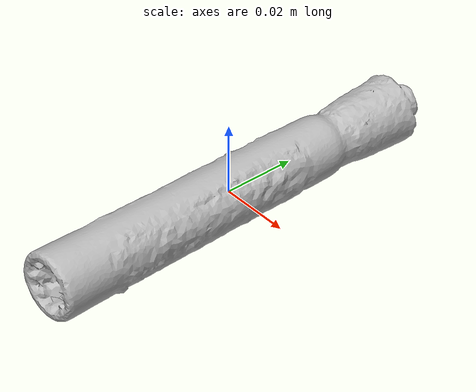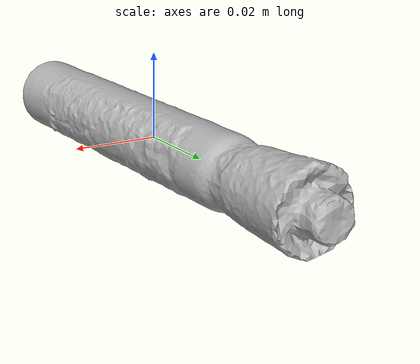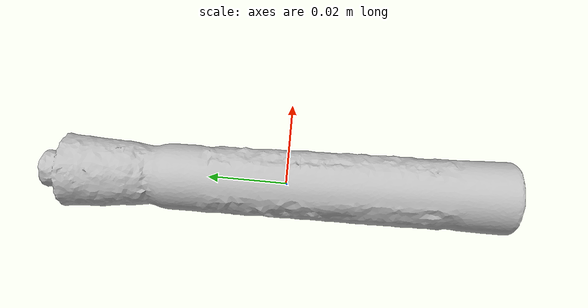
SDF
<?xml version='1.0'?>
<sdf version="1.4">
  <model name="large_marker">
    <static>false</static>
    <link name="link">
      <inertial>
        <pose>0 0 0 1.5699074828200996 -0.9271848404237288 -3.120076490318127</pose>
        <mass>2.7399944924772163e-05</mass>
        <inertia>
          <ixx>3.0985440909539734e-08</ixx>
          <ixy>-9.926167350636332e-24</ixy>
          <ixz>-4.238896742550794e-25</ixz>
          <iyy>3.098119463302472e-08</iyy>
          <iyz>1.4464553558132472e-25</iyz>
          <izz>1.0631513526588346e-09</izz>
        </inertia>
      </inertial>
      <collision name="collision">
        <geometry>
          <mesh>
            <!-- Use a downsampled mesh for collisions -->
            <uri>model://040_large_marker/google_16k/textured_simple.obj</uri>
	        </mesh>
        </geometry>
        <surface>
      </surface>
      </collision>
      <visual name="visual">
        <geometry>
          <mesh>
            <uri>model://040_large_marker/google_16k/textured_simple.obj</uri>
	        </mesh>
        </geometry>
      </visual>
    </link>
  </model>
</sdf>
